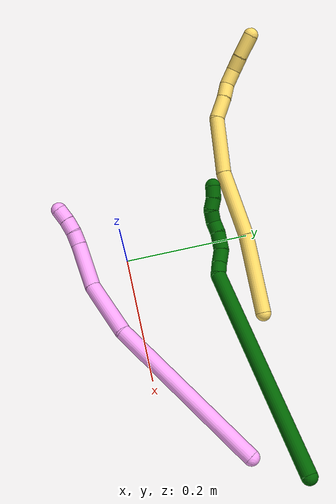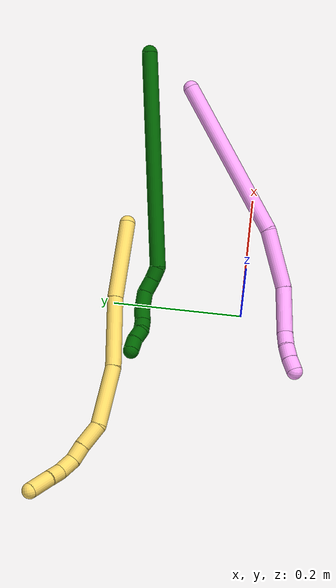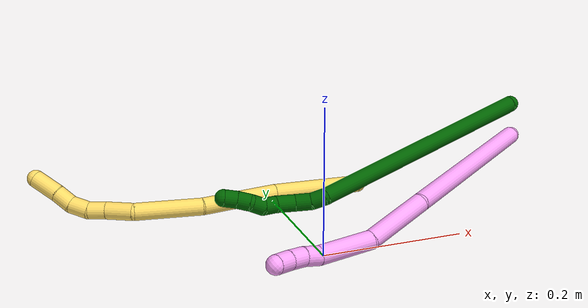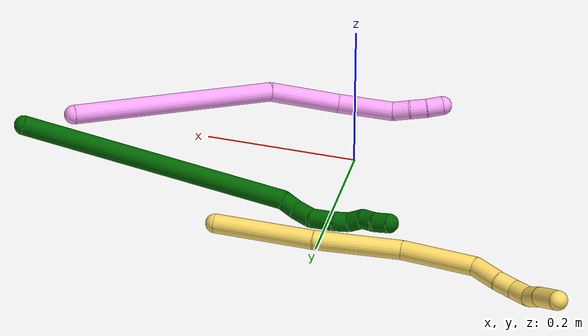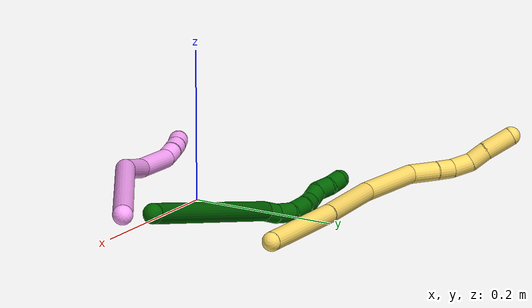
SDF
<sdf version="1.7">
 <world name="default">
  <model name="4">
   <static>0</static>
   <link name="4">
    <collision name="collision-cylinder-e_1_1_4">
     <pose>-0.104037 0.030611 -0.077881 -2.76709 -0.893415 2.38827</pose>
     <geometry><cylinder><radius>0.0125</radius><length>0.26703</length></cylinder></geometry>
     <surface>
      <friction><ode><mu>1.16</mu><mu2>1.16</mu2><slip1>0</slip1><slip2>0</slip2></ode></friction>
      <contact><ode><kp>1e+06</kp><kd>1</kd><max_vel>0</max_vel><min_depth>0.001</min_depth></ode></contact>
     </surface>
    </collision>
    <visual name="visual-cylinder-e_1_1_4">
     <pose>-0.104037 0.030611 -0.077881 -2.76709 -0.893415 2.38827</pose>
     <geometry><cylinder><radius>0.0125</radius><length>0.26703</length></cylinder></geometry>
     <material><ambient>1 0.65098 0.996078 1</ambient></material>
    </visual>
    <collision name="collision-cylinder-e_2_4_5">
     <pose>-0.235335 0.070746 -0.192328 -2.88678 -0.624996 2.38663</pose>
     <geometry><cylinder><radius>0.0125</radius><length>0.093186</length></cylinder></geometry>
     <surface>
      <friction><ode><mu>1.16</mu><mu2>1.16</mu2><slip1>0</slip1><slip2>0</slip2></ode></friction>
      <contact><ode><kp>1e+06</kp><kd>1</kd><max_vel>0</max_vel><min_depth>0.001</min_depth></ode></contact>
     </surface>
    </collision>
    <visual name="visual-cylinder-e_2_4_5">
     <pose>-0.235335 0.070746 -0.192328 -2.88678 -0.624996 2.38663</pose>
     <geometry><cylinder><radius>0.0125</radius><length>0.093186</length></cylinder></geometry>
     <material><ambient>1 0.65098 0.996078 1</ambient></material>
    </visual>
    <collision name="collision-cylinder-e_3_5_6">
     <pose>-0.279155 0.098255 -0.256555 -2.56512 -0.465123 1.34804</pose>
     <geometry><cylinder><radius>0.0125</radius><length>0.073834</length></cylinder></geometry>
     <surface>
      <friction><ode><mu>1.16</mu><mu2>1.16</mu2><slip1>0</slip1><slip2>0</slip2></ode></friction>
      <contact><ode><kp>1e+06</kp><kd>1</kd><max_vel>0</max_vel><min_depth>0.001</min_depth></ode></contact>
     </surface>
    </collision>
    <visual name="visual-cylinder-e_3_5_6">
     <pose>-0.279155 0.098255 -0.256555 -2.56512 -0.465123 1.34804</pose>
     <geometry><cylinder><radius>0.0125</radius><length>0.073834</length></cylinder></geometry>
     <material><ambient>1 0.65098 0.996078 1</ambient></material>
    </visual>
    <collision name="collision-cylinder-e_4_6_7">
     <pose>-0.301777 0.123282 -0.290404 -2.29153 -0.57422 1.15606</pose>
     <geometry><cylinder><radius>0.0125</radius><length>0.022328</length></cylinder></geometry>
     <surface>
      <friction><ode><mu>1.16</mu><mu2>1.16</mu2><slip1>0</slip1><slip2>0</slip2></ode></friction>
      <contact><ode><kp>1e+06</kp><kd>1</kd><max_vel>0</max_vel><min_depth>0.001</min_depth></ode></contact>
     </surface>
    </collision>
    <visual name="visual-cylinder-e_4_6_7">
     <pose>-0.301777 0.123282 -0.290404 -2.29153 -0.57422 1.15606</pose>
     <geometry><cylinder><radius>0.0125</radius><length>0.022328</length></cylinder></geometry>
     <material><ambient>1 0.65098 0.996078 1</ambient></material>
    </visual>
    <collision name="collision-cylinder-e_5_7_8">
     <pose>-0.314788 0.135666 -0.303068 -2.45216 -0.691225 1.57361</pose>
     <geometry><cylinder><radius>0.0125</radius><length>0.021794</length></cylinder></geometry>
     <surface>
      <friction><ode><mu>1.16</mu><mu2>1.16</mu2><slip1>0</slip1><slip2>0</slip2></ode></friction>
      <contact><ode><kp>1e+06</kp><kd>1</kd><max_vel>0</max_vel><min_depth>0.001</min_depth></ode></contact>
     </surface>
    </collision>
    <visual name="visual-cylinder-e_5_7_8">
     <pose>-0.314788 0.135666 -0.303068 -2.45216 -0.691225 1.57361</pose>
     <geometry><cylinder><radius>0.0125</radius><length>0.021794</length></cylinder></geometry>
     <material><ambient>1 0.65098 0.996078 1</ambient></material>
    </visual>
    <collision name="collision-cylinder-e_6_8_2">
     <pose>-0.329638 0.145672 -0.315454 -2.47316 -0.80971 1.77959</pose>
     <geometry><cylinder><radius>0.0125</radius><length>0.021828</length></cylinder></geometry>
     <surface>
      <friction><ode><mu>1.16</mu><mu2>1.16</mu2><slip1>0</slip1><slip2>0</slip2></ode></friction>
      <contact><ode><kp>1e+06</kp><kd>1</kd><max_vel>0</max_vel><min_depth>0.001</min_depth></ode></contact>
     </surface>
    </collision>
    <visual name="visual-cylinder-e_6_8_2">
     <pose>-0.329638 0.145672 -0.315454 -2.47316 -0.80971 1.77959</pose>
     <geometry><cylinder><radius>0.0125</radius><length>0.021828</length></cylinder></geometry>
     <material><ambient>1 0.65098 0.996078 1</ambient></material>
    </visual>
    <collision name="collision-sphere-2">
     <pose>-0.337541 0.150337 -0.321362 0 -0 0</pose>
     <geometry><sphere><radius>0.0125</radius></sphere></geometry>
     <surface>
      <friction><ode><mu>1.16</mu><mu2>1.16</mu2><slip1>0</slip1><slip2>0</slip2></ode></friction>
      <contact><ode><kp>1e+06</kp><kd>1</kd><max_vel>0</max_vel><min_depth>0.001</min_depth></ode></contact>
     </surface>
    </collision>
    <visual name="visual-sphere-2">
     <pose>-0.337541 0.150337 -0.321362 0 -0 0</pose>
     <geometry><sphere><radius>0.0125</radius></sphere></geometry>
     <material><ambient>1 0.65098 0.996078 1</ambient></material>
    </visual>
    <collision name="collision-sphere-4">
     <pose>-0.208074 0.061222 -0.155762 0 -0 0</pose>
     <geometry><sphere><radius>0.0125</radius></sphere></geometry>
     <surface>
      <friction><ode><mu>1.16</mu><mu2>1.16</mu2><slip1>0</slip1><slip2>0</slip2></ode></friction>
      <contact><ode><kp>1e+06</kp><kd>1</kd><max_vel>0</max_vel><min_depth>0.001</min_depth></ode></contact>
     </surface>
    </collision>
    <visual name="visual-sphere-4">
     <pose>-0.208074 0.061222 -0.155762 0 -0 0</pose>
     <geometry><sphere><radius>0.0125</radius></sphere></geometry>
     <material><ambient>1 0.65098 0.996078 1</ambient></material>
    </visual>
    <collision name="collision-sphere-1">
     <geometry><sphere><radius>0.0125</radius></sphere></geometry>
     <surface>
      <friction><ode><mu>1.16</mu><mu2>1.16</mu2><slip1>0</slip1><slip2>0</slip2></ode></friction>
      <contact><ode><kp>1e+06</kp><kd>1</kd><max_vel>0</max_vel><min_depth>0.001</min_depth></ode></contact>
     </surface>
    </collision>
    <visual name="visual-sphere-1">
     <geometry><sphere><radius>0.0125</radius></sphere></geometry>
     <material><ambient>1 0.65098 0.996078 1</ambient></material>
    </visual>
    <collision name="collision-sphere-8">
     <pose>-0.321735 0.141006 -0.309547 0 -0 0</pose>
     <geometry><sphere><radius>0.0125</radius></sphere></geometry>
     <surface>
      <friction><ode><mu>1.16</mu><mu2>1.16</mu2><slip1>0</slip1><slip2>0</slip2></ode></friction>
      <contact><ode><kp>1e+06</kp><kd>1</kd><max_vel>0</max_vel><min_depth>0.001</min_depth></ode></contact>
     </surface>
    </collision>
    <visual name="visual-sphere-8">
     <pose>-0.321735 0.141006 -0.309547 0 -0 0</pose>
     <geometry><sphere><radius>0.0125</radius></sphere></geometry>
     <material><ambient>1 0.65098 0.996078 1</ambient></material>
    </visual>
    <collision name="collision-sphere-5">
     <pose>-0.262596 0.08027 -0.228893 0 -0 0</pose>
     <geometry><sphere><radius>0.0125</radius></sphere></geometry>
     <surface>
      <friction><ode><mu>1.16</mu><mu2>1.16</mu2><slip1>0</slip1><slip2>0</slip2></ode></friction>
      <contact><ode><kp>1e+06</kp><kd>1</kd><max_vel>0</max_vel><min_depth>0.001</min_depth></ode></contact>
     </surface>
    </collision>
    <visual name="visual-sphere-5">
     <pose>-0.262596 0.08027 -0.228893 0 -0 0</pose>
     <geometry><sphere><radius>0.0125</radius></sphere></geometry>
     <material><ambient>1 0.65098 0.996078 1</ambient></material>
    </visual>
    <collision name="collision-sphere-6">
     <pose>-0.295713 0.11624 -0.284218 0 -0 0</pose>
     <geometry><sphere><radius>0.0125</radius></sphere></geometry>
     <surface>
      <friction><ode><mu>1.16</mu><mu2>1.16</mu2><slip1>0</slip1><slip2>0</slip2></ode></friction>
      <contact><ode><kp>1e+06</kp><kd>1</kd><max_vel>0</max_vel><min_depth>0.001</min_depth></ode></contact>
     </surface>
    </collision>
    <visual name="visual-sphere-6">
     <pose>-0.295713 0.11624 -0.284218 0 -0 0</pose>
     <geometry><sphere><radius>0.0125</radius></sphere></geometry>
     <material><ambient>1 0.65098 0.996078 1</ambient></material>
    </visual>
    <collision name="collision-sphere-7">
     <pose>-0.307841 0.130325 -0.29659 0 -0 0</pose>
     <geometry><sphere><radius>0.0125</radius></sphere></geometry>
     <surface>
      <friction><ode><mu>1.16</mu><mu2>1.16</mu2><slip1>0</slip1><slip2>0</slip2></ode></friction>
      <contact><ode><kp>1e+06</kp><kd>1</kd><max_vel>0</max_vel><min_depth>0.001</min_depth></ode></contact>
     </surface>
    </collision>
    <visual name="visual-sphere-7">
     <pose>-0.307841 0.130325 -0.29659 0 -0 0</pose>
     <geometry><sphere><radius>0.0125</radius></sphere></geometry>
     <material><ambient>1 0.65098 0.996078 1</ambient></material>
    </visual>
    <inertial>
     <pose>-0.182232 0.061821 -0.155273 0 -0 0</pose>
     <mass>0.5</mass>
     <inertia>
      <ixx>-3.1e-05</ixx>
      <ixy>0</ixy>
      <ixz>0</ixz>
      <iyy>0.002228</iyy>
      <iyz>0</iyz>
      <izz>0.000879</izz>
     </inertia>
    </inertial>
   </link>
   <pose>0.345511 0.117217 0.088785 0.801395 0.205797 1.19679</pose>
  </model>
  <model name="5">
   <static>0</static>
   <link name="5">
    <collision name="collision-cylinder-e_1_1_4">
     <pose>-0.03747 0.013023 0.05201 -0.245351 -0.609966 0.077588</pose>
     <geometry><cylinder><radius>0.0125</radius><length>0.130823</length></cylinder></geometry>
     <surface>
      <friction><ode><mu>1.16</mu><mu2>1.16</mu2><slip1>0</slip1><slip2>0</slip2></ode></friction>
      <contact><ode><kp>1e+06</kp><kd>1</kd><max_vel>0</max_vel><min_depth>0.001</min_depth></ode></contact>
     </surface>
    </collision>
    <visual name="visual-cylinder-e_1_1_4">
     <pose>-0.03747 0.013023 0.05201 -0.245351 -0.609966 0.077588</pose>
     <geometry><cylinder><radius>0.0125</radius><length>0.130823</length></cylinder></geometry>
     <material><ambient>1 0.858824 0.4 1</ambient></material>
    </visual>
    <collision name="collision-cylinder-e_2_4_5">
     <pose>-0.101768 0.040845 0.151661 -0.30119 -0.493405 0.076391</pose>
     <geometry><cylinder><radius>0.0125</radius><length>0.113284</length></cylinder></geometry>
     <surface>
      <friction><ode><mu>1.16</mu><mu2>1.16</mu2><slip1>0</slip1><slip2>0</slip2></ode></friction>
      <contact><ode><kp>1e+06</kp><kd>1</kd><max_vel>0</max_vel><min_depth>0.001</min_depth></ode></contact>
     </surface>
    </collision>
    <visual name="visual-cylinder-e_2_4_5">
     <pose>-0.101768 0.040845 0.151661 -0.30119 -0.493405 0.076391</pose>
     <geometry><cylinder><radius>0.0125</radius><length>0.113284</length></cylinder></geometry>
     <material><ambient>1 0.858824 0.4 1</ambient></material>
    </visual>
    <collision name="collision-cylinder-e_3_5_6">
     <pose>-0.159188 0.062443 0.236649 -0.180077 -0.678321 0.06368</pose>
     <geometry><cylinder><radius>0.0125</radius><length>0.097509</length></cylinder></geometry>
     <surface>
      <friction><ode><mu>1.16</mu><mu2>1.16</mu2><slip1>0</slip1><slip2>0</slip2></ode></friction>
      <contact><ode><kp>1e+06</kp><kd>1</kd><max_vel>0</max_vel><min_depth>0.001</min_depth></ode></contact>
     </surface>
    </collision>
    <visual name="visual-cylinder-e_3_5_6">
     <pose>-0.159188 0.062443 0.236649 -0.180077 -0.678321 0.06368</pose>
     <geometry><cylinder><radius>0.0125</radius><length>0.097509</length></cylinder></geometry>
     <material><ambient>1 0.858824 0.4 1</ambient></material>
    </visual>
    <collision name="collision-cylinder-e_4_6_7">
     <pose>-0.205859 0.065478 0.285141 0.325758 -0.939179 -0.166398</pose>
     <geometry><cylinder><radius>0.0125</radius><length>0.039844</length></cylinder></geometry>
     <surface>
      <friction><ode><mu>1.16</mu><mu2>1.16</mu2><slip1>0</slip1><slip2>0</slip2></ode></friction>
      <contact><ode><kp>1e+06</kp><kd>1</kd><max_vel>0</max_vel><min_depth>0.001</min_depth></ode></contact>
     </surface>
    </collision>
    <visual name="visual-cylinder-e_4_6_7">
     <pose>-0.205859 0.065478 0.285141 0.325758 -0.939179 -0.166398</pose>
     <geometry><cylinder><radius>0.0125</radius><length>0.039844</length></cylinder></geometry>
     <material><ambient>1 0.858824 0.4 1</ambient></material>
    </visual>
    <collision name="collision-cylinder-e_5_7_8">
     <pose>-0.231711 0.060128 0.304416 0.192633 -0.867689 -0.089461</pose>
     <geometry><cylinder><radius>0.0125</radius><length>0.025625</length></cylinder></geometry>
     <surface>
      <friction><ode><mu>1.16</mu><mu2>1.16</mu2><slip1>0</slip1><slip2>0</slip2></ode></friction>
      <contact><ode><kp>1e+06</kp><kd>1</kd><max_vel>0</max_vel><min_depth>0.001</min_depth></ode></contact>
     </surface>
    </collision>
    <visual name="visual-cylinder-e_5_7_8">
     <pose>-0.231711 0.060128 0.304416 0.192633 -0.867689 -0.089461</pose>
     <geometry><cylinder><radius>0.0125</radius><length>0.025625</length></cylinder></geometry>
     <material><ambient>1 0.858824 0.4 1</ambient></material>
    </visual>
    <collision name="collision-cylinder-e_6_8_9">
     <pose>-0.25449 0.057165 0.317467 0.272808 -1.19647 -0.186551</pose>
     <geometry><cylinder><radius>0.0125</radius><length>0.027945</length></cylinder></geometry>
     <surface>
      <friction><ode><mu>1.16</mu><mu2>1.16</mu2><slip1>0</slip1><slip2>0</slip2></ode></friction>
      <contact><ode><kp>1e+06</kp><kd>1</kd><max_vel>0</max_vel><min_depth>0.001</min_depth></ode></contact>
     </surface>
    </collision>
    <visual name="visual-cylinder-e_6_8_9">
     <pose>-0.25449 0.057165 0.317467 0.272808 -1.19647 -0.186551</pose>
     <geometry><cylinder><radius>0.0125</radius><length>0.027945</length></cylinder></geometry>
     <material><ambient>1 0.858824 0.4 1</ambient></material>
    </visual>
    <collision name="collision-cylinder-e_7_9_10">
     <pose>-0.280013 0.057505 0.323396 -1.03973 -1.41307 0.908871</pose>
     <geometry><cylinder><radius>0.0125</radius><length>0.02535</length></cylinder></geometry>
     <surface>
      <friction><ode><mu>1.16</mu><mu2>1.16</mu2><slip1>0</slip1><slip2>0</slip2></ode></friction>
      <contact><ode><kp>1e+06</kp><kd>1</kd><max_vel>0</max_vel><min_depth>0.001</min_depth></ode></contact>
     </surface>
    </collision>
    <visual name="visual-cylinder-e_7_9_10">
     <pose>-0.280013 0.057505 0.323396 -1.03973 -1.41307 0.908871</pose>
     <geometry><cylinder><radius>0.0125</radius><length>0.02535</length></cylinder></geometry>
     <material><ambient>1 0.858824 0.4 1</ambient></material>
    </visual>
    <collision name="collision-cylinder-e_8_10_2">
     <pose>-0.31213 0.06011 0.32714 -0.313771 -1.42507 0.271644</pose>
     <geometry><cylinder><radius>0.0125</radius><length>0.03962</length></cylinder></geometry>
     <surface>
      <friction><ode><mu>1.16</mu><mu2>1.16</mu2><slip1>0</slip1><slip2>0</slip2></ode></friction>
      <contact><ode><kp>1e+06</kp><kd>1</kd><max_vel>0</max_vel><min_depth>0.001</min_depth></ode></contact>
     </surface>
    </collision>
    <visual name="visual-cylinder-e_8_10_2">
     <pose>-0.31213 0.06011 0.32714 -0.313771 -1.42507 0.271644</pose>
     <geometry><cylinder><radius>0.0125</radius><length>0.03962</length></cylinder></geometry>
     <material><ambient>1 0.858824 0.4 1</ambient></material>
    </visual>
    <collision name="collision-sphere-2">
     <pose>-0.331731 0.060998 0.329876 0 -0 0</pose>
     <geometry><sphere><radius>0.0125</radius></sphere></geometry>
     <surface>
      <friction><ode><mu>1.16</mu><mu2>1.16</mu2><slip1>0</slip1><slip2>0</slip2></ode></friction>
      <contact><ode><kp>1e+06</kp><kd>1</kd><max_vel>0</max_vel><min_depth>0.001</min_depth></ode></contact>
     </surface>
    </collision>
    <visual name="visual-sphere-2">
     <pose>-0.331731 0.060998 0.329876 0 -0 0</pose>
     <geometry><sphere><radius>0.0125</radius></sphere></geometry>
     <material><ambient>1 0.858824 0.4 1</ambient></material>
    </visual>
    <collision name="collision-sphere-10">
     <pose>-0.29253 0.059222 0.324404 0 -0 0</pose>
     <geometry><sphere><radius>0.0125</radius></sphere></geometry>
     <surface>
      <friction><ode><mu>1.16</mu><mu2>1.16</mu2><slip1>0</slip1><slip2>0</slip2></ode></friction>
      <contact><ode><kp>1e+06</kp><kd>1</kd><max_vel>0</max_vel><min_depth>0.001</min_depth></ode></contact>
     </surface>
    </collision>
    <visual name="visual-sphere-10">
     <pose>-0.29253 0.059222 0.324404 0 -0 0</pose>
     <geometry><sphere><radius>0.0125</radius></sphere></geometry>
     <material><ambient>1 0.858824 0.4 1</ambient></material>
    </visual>
    <collision name="collision-sphere-9">
     <pose>-0.267495 0.055789 0.322387 0 -0 0</pose>
     <geometry><sphere><radius>0.0125</radius></sphere></geometry>
     <surface>
      <friction><ode><mu>1.16</mu><mu2>1.16</mu2><slip1>0</slip1><slip2>0</slip2></ode></friction>
      <contact><ode><kp>1e+06</kp><kd>1</kd><max_vel>0</max_vel><min_depth>0.001</min_depth></ode></contact>
     </surface>
    </collision>
    <visual name="visual-sphere-9">
     <pose>-0.267495 0.055789 0.322387 0 -0 0</pose>
     <geometry><sphere><radius>0.0125</radius></sphere></geometry>
     <material><ambient>1 0.858824 0.4 1</ambient></material>
    </visual>
    <collision name="collision-sphere-4">
     <pose>-0.074941 0.026046 0.10402 0 -0 0</pose>
     <geometry><sphere><radius>0.0125</radius></sphere></geometry>
     <surface>
      <friction><ode><mu>1.16</mu><mu2>1.16</mu2><slip1>0</slip1><slip2>0</slip2></ode></friction>
      <contact><ode><kp>1e+06</kp><kd>1</kd><max_vel>0</max_vel><min_depth>0.001</min_depth></ode></contact>
     </surface>
    </collision>
    <visual name="visual-sphere-4">
     <pose>-0.074941 0.026046 0.10402 0 -0 0</pose>
     <geometry><sphere><radius>0.0125</radius></sphere></geometry>
     <material><ambient>1 0.858824 0.4 1</ambient></material>
    </visual>
    <collision name="collision-sphere-1">
     <geometry><sphere><radius>0.0125</radius></sphere></geometry>
     <surface>
      <friction><ode><mu>1.16</mu><mu2>1.16</mu2><slip1>0</slip1><slip2>0</slip2></ode></friction>
      <contact><ode><kp>1e+06</kp><kd>1</kd><max_vel>0</max_vel><min_depth>0.001</min_depth></ode></contact>
     </surface>
    </collision>
    <visual name="visual-sphere-1">
     <geometry><sphere><radius>0.0125</radius></sphere></geometry>
     <material><ambient>1 0.858824 0.4 1</ambient></material>
    </visual>
    <collision name="collision-sphere-8">
     <pose>-0.241485 0.058542 0.312547 0 -0 0</pose>
     <geometry><sphere><radius>0.0125</radius></sphere></geometry>
     <surface>
      <friction><ode><mu>1.16</mu><mu2>1.16</mu2><slip1>0</slip1><slip2>0</slip2></ode></friction>
      <contact><ode><kp>1e+06</kp><kd>1</kd><max_vel>0</max_vel><min_depth>0.001</min_depth></ode></contact>
     </surface>
    </collision>
    <visual name="visual-sphere-8">
     <pose>-0.241485 0.058542 0.312547 0 -0 0</pose>
     <geometry><sphere><radius>0.0125</radius></sphere></geometry>
     <material><ambient>1 0.858824 0.4 1</ambient></material>
    </visual>
    <collision name="collision-sphere-5">
     <pose>-0.128595 0.055644 0.199301 0 -0 0</pose>
     <geometry><sphere><radius>0.0125</radius></sphere></geometry>
     <surface>
      <friction><ode><mu>1.16</mu><mu2>1.16</mu2><slip1>0</slip1><slip2>0</slip2></ode></friction>
      <contact><ode><kp>1e+06</kp><kd>1</kd><max_vel>0</max_vel><min_depth>0.001</min_depth></ode></contact>
     </surface>
    </collision>
    <visual name="visual-sphere-5">
     <pose>-0.128595 0.055644 0.199301 0 -0 0</pose>
     <geometry><sphere><radius>0.0125</radius></sphere></geometry>
     <material><ambient>1 0.858824 0.4 1</ambient></material>
    </visual>
    <collision name="collision-sphere-6">
     <pose>-0.189781 0.069242 0.273996 0 -0 0</pose>
     <geometry><sphere><radius>0.0125</radius></sphere></geometry>
     <surface>
      <friction><ode><mu>1.16</mu><mu2>1.16</mu2><slip1>0</slip1><slip2>0</slip2></ode></friction>
      <contact><ode><kp>1e+06</kp><kd>1</kd><max_vel>0</max_vel><min_depth>0.001</min_depth></ode></contact>
     </surface>
    </collision>
    <visual name="visual-sphere-6">
     <pose>-0.189781 0.069242 0.273996 0 -0 0</pose>
     <geometry><sphere><radius>0.0125</radius></sphere></geometry>
     <material><ambient>1 0.858824 0.4 1</ambient></material>
    </visual>
    <collision name="collision-sphere-7">
     <pose>-0.221937 0.061714 0.296285 0 -0 0</pose>
     <geometry><sphere><radius>0.0125</radius></sphere></geometry>
     <surface>
      <friction><ode><mu>1.16</mu><mu2>1.16</mu2><slip1>0</slip1><slip2>0</slip2></ode></friction>
      <contact><ode><kp>1e+06</kp><kd>1</kd><max_vel>0</max_vel><min_depth>0.001</min_depth></ode></contact>
     </surface>
    </collision>
    <visual name="visual-sphere-7">
     <pose>-0.221937 0.061714 0.296285 0 -0 0</pose>
     <geometry><sphere><radius>0.0125</radius></sphere></geometry>
     <material><ambient>1 0.858824 0.4 1</ambient></material>
    </visual>
    <inertial>
     <pose>-0.145339 0.044012 0.192506 0 -0 0</pose>
     <mass>0.5</mass>
     <inertia>
      <ixx>0.000336</ixx>
      <ixy>0</ixy>
      <ixz>0</ixz>
      <iyy>0.000438</iyy>
      <iyz>0</iyz>
      <izz>0.000184</izz>
     </inertia>
    </inertial>
   </link>
   <pose>0.133764 0.195661 0.011622 2.20108 0.515508 -0.888743</pose>
  </model>
  <model name="6">
   <static>0</static>
   <link name="6">
    <collision name="collision-cylinder-e_1_1_4">
     <pose>-0.121995 -0.065706 0.102745 0.568962 -0.78555 -0.241119</pose>
     <geometry><cylinder><radius>0.0125</radius><length>0.345001</length></cylinder></geometry>
     <surface>
      <friction><ode><mu>1.16</mu><mu2>1.16</mu2><slip1>0</slip1><slip2>0</slip2></ode></friction>
      <contact><ode><kp>1e+06</kp><kd>1</kd><max_vel>0</max_vel><min_depth>0.001</min_depth></ode></contact>
     </surface>
    </collision>
    <visual name="visual-cylinder-e_1_1_4">
     <pose>-0.121995 -0.065706 0.102745 0.568962 -0.78555 -0.241119</pose>
     <geometry><cylinder><radius>0.0125</radius><length>0.345001</length></cylinder></geometry>
     <material><ambient>0 0.392157 0.003922 1</ambient></material>
    </visual>
    <collision name="collision-cylinder-e_2_4_5">
     <pose>-0.250576 -0.139037 0.208682 1.17432 -0.672786 -0.457257</pose>
     <geometry><cylinder><radius>0.0125</radius><length>0.021141</length></cylinder></geometry>
     <surface>
      <friction><ode><mu>1.16</mu><mu2>1.16</mu2><slip1>0</slip1><slip2>0</slip2></ode></friction>
      <contact><ode><kp>1e+06</kp><kd>1</kd><max_vel>0</max_vel><min_depth>0.001</min_depth></ode></contact>
     </surface>
    </collision>
    <visual name="visual-cylinder-e_2_4_5">
     <pose>-0.250576 -0.139037 0.208682 1.17432 -0.672786 -0.457257</pose>
     <geometry><cylinder><radius>0.0125</radius><length>0.021141</length></cylinder></geometry>
     <material><ambient>0 0.392157 0.003922 1</ambient></material>
    </visual>
    <collision name="collision-cylinder-e_3_5_6">
     <pose>-0.266528 -0.154455 0.213384 1.37943 -0.867675 -0.730024</pose>
     <geometry><cylinder><radius>0.0125</radius><length>0.024552</length></cylinder></geometry>
     <surface>
      <friction><ode><mu>1.16</mu><mu2>1.16</mu2><slip1>0</slip1><slip2>0</slip2></ode></friction>
      <contact><ode><kp>1e+06</kp><kd>1</kd><max_vel>0</max_vel><min_depth>0.001</min_depth></ode></contact>
     </surface>
    </collision>
    <visual name="visual-cylinder-e_3_5_6">
     <pose>-0.266528 -0.154455 0.213384 1.37943 -0.867675 -0.730024</pose>
     <geometry><cylinder><radius>0.0125</radius><length>0.024552</length></cylinder></geometry>
     <material><ambient>0 0.392157 0.003922 1</ambient></material>
    </visual>
    <collision name="collision-cylinder-e_4_6_7">
     <pose>-0.289052 -0.166996 0.219225 0.831231 -1.11646 -0.537849</pose>
     <geometry><cylinder><radius>0.0125</radius><length>0.02929</length></cylinder></geometry>
     <surface>
      <friction><ode><mu>1.16</mu><mu2>1.16</mu2><slip1>0</slip1><slip2>0</slip2></ode></friction>
      <contact><ode><kp>1e+06</kp><kd>1</kd><max_vel>0</max_vel><min_depth>0.001</min_depth></ode></contact>
     </surface>
    </collision>
    <visual name="visual-cylinder-e_4_6_7">
     <pose>-0.289052 -0.166996 0.219225 0.831231 -1.11646 -0.537849</pose>
     <geometry><cylinder><radius>0.0125</radius><length>0.02929</length></cylinder></geometry>
     <material><ambient>0 0.392157 0.003922 1</ambient></material>
    </visual>
    <collision name="collision-cylinder-e_5_7_8">
     <pose>-0.310916 -0.173852 0.228014 0.441757 -1.05544 -0.260274</pose>
     <geometry><cylinder><radius>0.0125</radius><length>0.020008</length></cylinder></geometry>
     <surface>
      <friction><ode><mu>1.16</mu><mu2>1.16</mu2><slip1>0</slip1><slip2>0</slip2></ode></friction>
      <contact><ode><kp>1e+06</kp><kd>1</kd><max_vel>0</max_vel><min_depth>0.001</min_depth></ode></contact>
     </surface>
    </collision>
    <visual name="visual-cylinder-e_5_7_8">
     <pose>-0.310916 -0.173852 0.228014 0.441757 -1.05544 -0.260274</pose>
     <geometry><cylinder><radius>0.0125</radius><length>0.020008</length></cylinder></geometry>
     <material><ambient>0 0.392157 0.003922 1</ambient></material>
    </visual>
    <collision name="collision-cylinder-e_6_8_9">
     <pose>-0.329611 -0.176126 0.232954 0.330637 -1.51973 -0.314445</pose>
     <geometry><cylinder><radius>0.0125</radius><length>0.020008</length></cylinder></geometry>
     <surface>
      <friction><ode><mu>1.16</mu><mu2>1.16</mu2><slip1>0</slip1><slip2>0</slip2></ode></friction>
      <contact><ode><kp>1e+06</kp><kd>1</kd><max_vel>0</max_vel><min_depth>0.001</min_depth></ode></contact>
     </surface>
    </collision>
    <visual name="visual-cylinder-e_6_8_9">
     <pose>-0.329611 -0.176126 0.232954 0.330637 -1.51973 -0.314445</pose>
     <geometry><cylinder><radius>0.0125</radius><length>0.020008</length></cylinder></geometry>
     <material><ambient>0 0.392157 0.003922 1</ambient></material>
    </visual>
    <collision name="collision-cylinder-e_7_9_10">
     <pose>-0.34845 -0.180835 0.232396 1.79614 -1.08597 -1.29655</pose>
     <geometry><cylinder><radius>0.0125</radius><length>0.02</length></cylinder></geometry>
     <surface>
      <friction><ode><mu>1.16</mu><mu2>1.16</mu2><slip1>0</slip1><slip2>0</slip2></ode></friction>
      <contact><ode><kp>1e+06</kp><kd>1</kd><max_vel>0</max_vel><min_depth>0.001</min_depth></ode></contact>
     </surface>
    </collision>
    <visual name="visual-cylinder-e_7_9_10">
     <pose>-0.34845 -0.180835 0.232396 1.79614 -1.08597 -1.29655</pose>
     <geometry><cylinder><radius>0.0125</radius><length>0.02</length></cylinder></geometry>
     <material><ambient>0 0.392157 0.003922 1</ambient></material>
    </visual>
    <collision name="collision-cylinder-e_8_10_2">
     <pose>-0.366802 -0.18831 0.23239 1.23147 -1.25457 -0.947836</pose>
     <geometry><cylinder><radius>0.0125</radius><length>0.02</length></cylinder></geometry>
     <surface>
      <friction><ode><mu>1.16</mu><mu2>1.16</mu2><slip1>0</slip1><slip2>0</slip2></ode></friction>
      <contact><ode><kp>1e+06</kp><kd>1</kd><max_vel>0</max_vel><min_depth>0.001</min_depth></ode></contact>
     </surface>
    </collision>
    <visual name="visual-cylinder-e_8_10_2">
     <pose>-0.366802 -0.18831 0.23239 1.23147 -1.25457 -0.947836</pose>
     <geometry><cylinder><radius>0.0125</radius><length>0.02</length></cylinder></geometry>
     <material><ambient>0 0.392157 0.003922 1</ambient></material>
    </visual>
    <collision name="collision-sphere-2">
     <pose>-0.376306 -0.191242 0.233425 0 -0 0</pose>
     <geometry><sphere><radius>0.0125</radius></sphere></geometry>
     <surface>
      <friction><ode><mu>1.16</mu><mu2>1.16</mu2><slip1>0</slip1><slip2>0</slip2></ode></friction>
      <contact><ode><kp>1e+06</kp><kd>1</kd><max_vel>0</max_vel><min_depth>0.001</min_depth></ode></contact>
     </surface>
    </collision>
    <visual name="visual-sphere-2">
     <pose>-0.376306 -0.191242 0.233425 0 -0 0</pose>
     <geometry><sphere><radius>0.0125</radius></sphere></geometry>
     <material><ambient>0 0.392157 0.003922 1</ambient></material>
    </visual>
    <collision name="collision-sphere-10">
     <pose>-0.357298 -0.185377 0.231354 0 -0 0</pose>
     <geometry><sphere><radius>0.0125</radius></sphere></geometry>
     <surface>
      <friction><ode><mu>1.16</mu><mu2>1.16</mu2><slip1>0</slip1><slip2>0</slip2></ode></friction>
      <contact><ode><kp>1e+06</kp><kd>1</kd><max_vel>0</max_vel><min_depth>0.001</min_depth></ode></contact>
     </surface>
    </collision>
    <visual name="visual-sphere-10">
     <pose>-0.357298 -0.185377 0.231354 0 -0 0</pose>
     <geometry><sphere><radius>0.0125</radius></sphere></geometry>
     <material><ambient>0 0.392157 0.003922 1</ambient></material>
    </visual>
    <collision name="collision-sphere-9">
     <pose>-0.339602 -0.176292 0.233437 0 -0 0</pose>
     <geometry><sphere><radius>0.0125</radius></sphere></geometry>
     <surface>
      <friction><ode><mu>1.16</mu><mu2>1.16</mu2><slip1>0</slip1><slip2>0</slip2></ode></friction>
      <contact><ode><kp>1e+06</kp><kd>1</kd><max_vel>0</max_vel><min_depth>0.001</min_depth></ode></contact>
     </surface>
    </collision>
    <visual name="visual-sphere-9">
     <pose>-0.339602 -0.176292 0.233437 0 -0 0</pose>
     <geometry><sphere><radius>0.0125</radius></sphere></geometry>
     <material><ambient>0 0.392157 0.003922 1</ambient></material>
    </visual>
    <collision name="collision-sphere-4">
     <pose>-0.243989 -0.131411 0.205489 0 -0 0</pose>
     <geometry><sphere><radius>0.0125</radius></sphere></geometry>
     <surface>
      <friction><ode><mu>1.16</mu><mu2>1.16</mu2><slip1>0</slip1><slip2>0</slip2></ode></friction>
      <contact><ode><kp>1e+06</kp><kd>1</kd><max_vel>0</max_vel><min_depth>0.001</min_depth></ode></contact>
     </surface>
    </collision>
    <visual name="visual-sphere-4">
     <pose>-0.243989 -0.131411 0.205489 0 -0 0</pose>
     <geometry><sphere><radius>0.0125</radius></sphere></geometry>
     <material><ambient>0 0.392157 0.003922 1</ambient></material>
    </visual>
    <collision name="collision-sphere-1">
     <geometry><sphere><radius>0.0125</radius></sphere></geometry>
     <surface>
      <friction><ode><mu>1.16</mu><mu2>1.16</mu2><slip1>0</slip1><slip2>0</slip2></ode></friction>
      <contact><ode><kp>1e+06</kp><kd>1</kd><max_vel>0</max_vel><min_depth>0.001</min_depth></ode></contact>
     </surface>
    </collision>
    <visual name="visual-sphere-1">
     <geometry><sphere><radius>0.0125</radius></sphere></geometry>
     <material><ambient>0 0.392157 0.003922 1</ambient></material>
    </visual>
    <collision name="collision-sphere-8">
     <pose>-0.31962 -0.17596 0.232471 0 -0 0</pose>
     <geometry><sphere><radius>0.0125</radius></sphere></geometry>
     <surface>
      <friction><ode><mu>1.16</mu><mu2>1.16</mu2><slip1>0</slip1><slip2>0</slip2></ode></friction>
      <contact><ode><kp>1e+06</kp><kd>1</kd><max_vel>0</max_vel><min_depth>0.001</min_depth></ode></contact>
     </surface>
    </collision>
    <visual name="visual-sphere-8">
     <pose>-0.31962 -0.17596 0.232471 0 -0 0</pose>
     <geometry><sphere><radius>0.0125</radius></sphere></geometry>
     <material><ambient>0 0.392157 0.003922 1</ambient></material>
    </visual>
    <collision name="collision-sphere-5">
     <pose>-0.257164 -0.146663 0.211874 0 -0 0</pose>
     <geometry><sphere><radius>0.0125</radius></sphere></geometry>
     <surface>
      <friction><ode><mu>1.16</mu><mu2>1.16</mu2><slip1>0</slip1><slip2>0</slip2></ode></friction>
      <contact><ode><kp>1e+06</kp><kd>1</kd><max_vel>0</max_vel><min_depth>0.001</min_depth></ode></contact>
     </surface>
    </collision>
    <visual name="visual-sphere-5">
     <pose>-0.257164 -0.146663 0.211874 0 -0 0</pose>
     <geometry><sphere><radius>0.0125</radius></sphere></geometry>
     <material><ambient>0 0.392157 0.003922 1</ambient></material>
    </visual>
    <collision name="collision-sphere-6">
     <pose>-0.275892 -0.162248 0.214894 0 -0 0</pose>
     <geometry><sphere><radius>0.0125</radius></sphere></geometry>
     <surface>
      <friction><ode><mu>1.16</mu><mu2>1.16</mu2><slip1>0</slip1><slip2>0</slip2></ode></friction>
      <contact><ode><kp>1e+06</kp><kd>1</kd><max_vel>0</max_vel><min_depth>0.001</min_depth></ode></contact>
     </surface>
    </collision>
    <visual name="visual-sphere-6">
     <pose>-0.275892 -0.162248 0.214894 0 -0 0</pose>
     <geometry><sphere><radius>0.0125</radius></sphere></geometry>
     <material><ambient>0 0.392157 0.003922 1</ambient></material>
    </visual>
    <collision name="collision-sphere-7">
     <pose>-0.302211 -0.171745 0.223557 0 -0 0</pose>
     <geometry><sphere><radius>0.0125</radius></sphere></geometry>
     <surface>
      <friction><ode><mu>1.16</mu><mu2>1.16</mu2><slip1>0</slip1><slip2>0</slip2></ode></friction>
      <contact><ode><kp>1e+06</kp><kd>1</kd><max_vel>0</max_vel><min_depth>0.001</min_depth></ode></contact>
     </surface>
    </collision>
    <visual name="visual-sphere-7">
     <pose>-0.302211 -0.171745 0.223557 0 -0 0</pose>
     <geometry><sphere><radius>0.0125</radius></sphere></geometry>
     <material><ambient>0 0.392157 0.003922 1</ambient></material>
    </visual>
    <inertial>
     <pose>-0.179033 -0.097353 0.140075 0 -0 0</pose>
     <mass>0.5</mass>
     <inertia>
      <ixx>0.00175</ixx>
      <ixy>0</ixy>
      <ixz>0</ixz>
      <iyy>0.002535</iyy>
      <iyz>0</iyz>
      <izz>0.003772</izz>
     </inertia>
    </inertial>
   </link>
   <pose>0.388505 0.188951 0.112888 2.33118 0.501174 -0.023803</pose>
  </model>
 </world>
</sdf>
